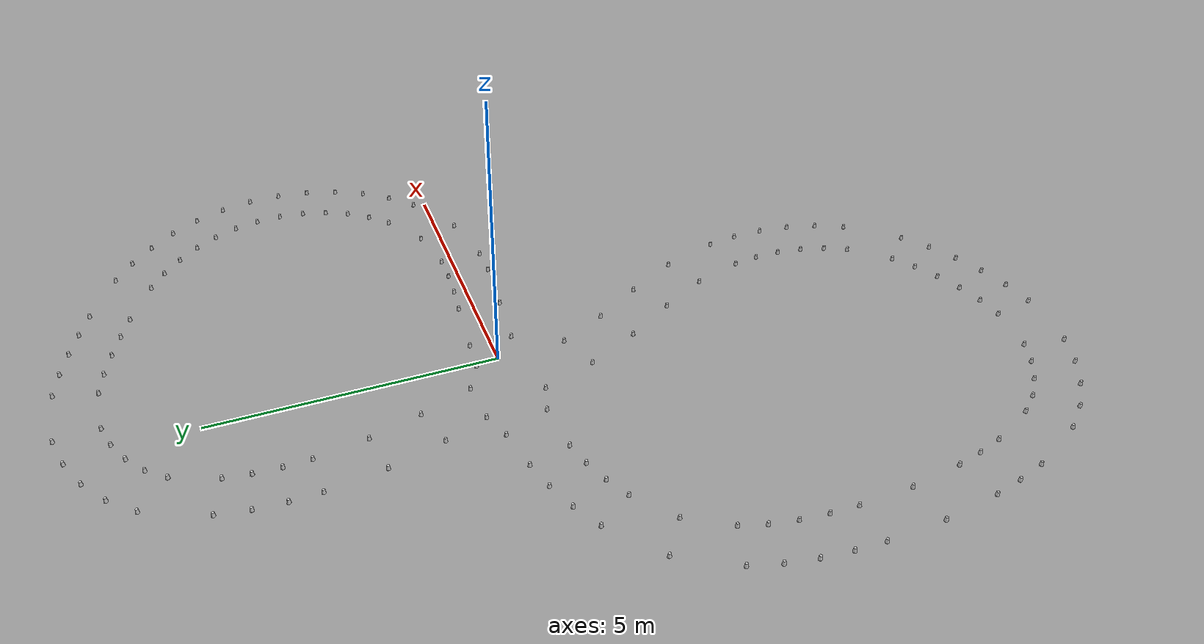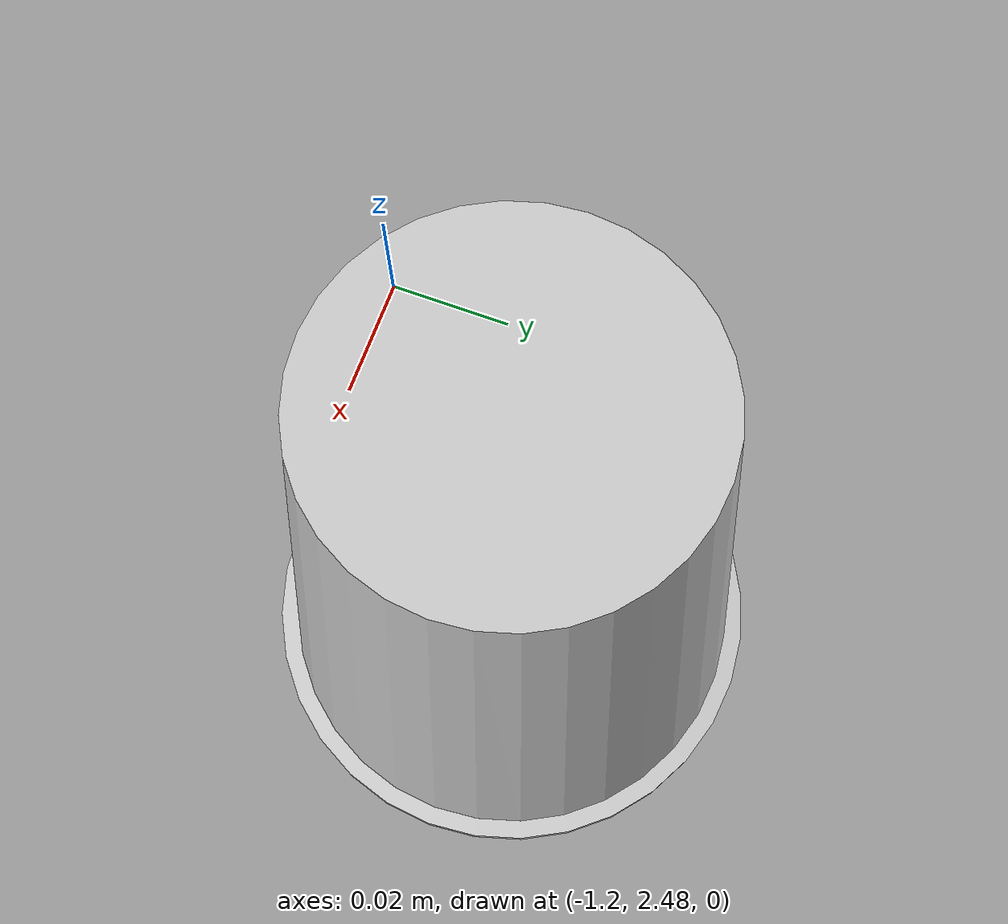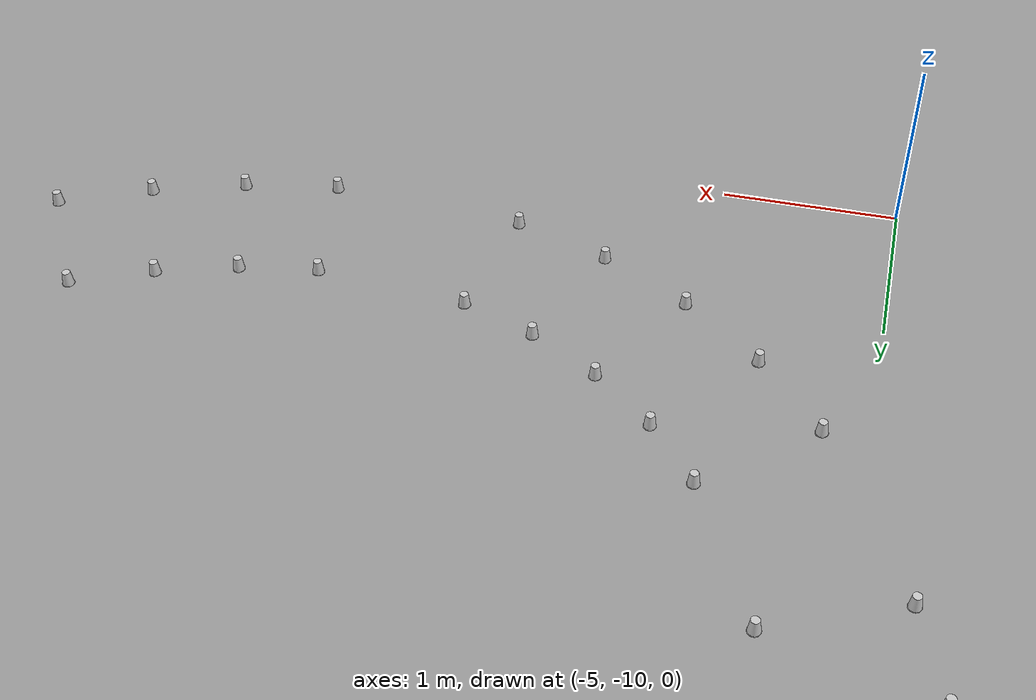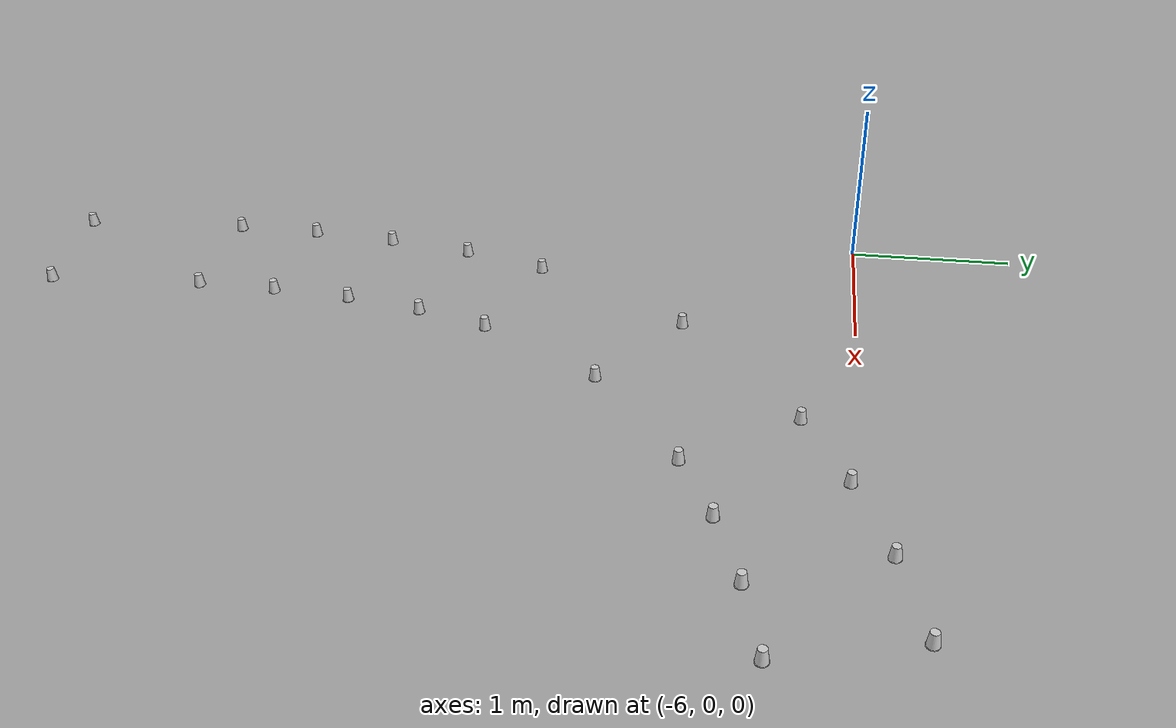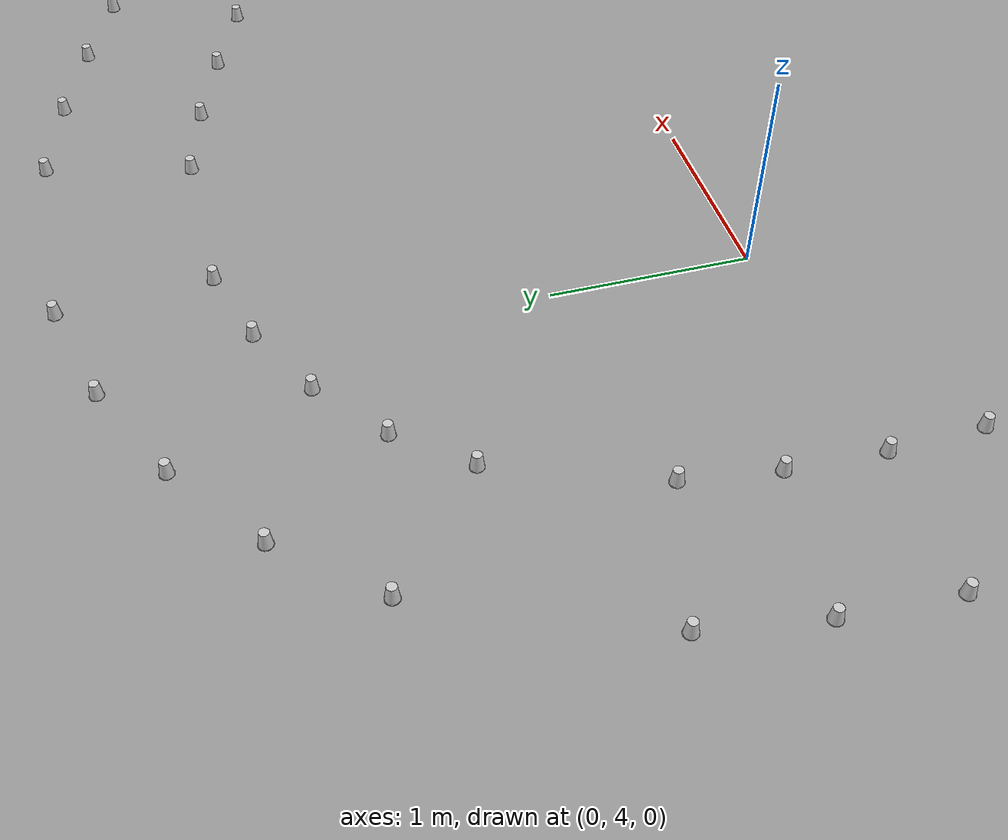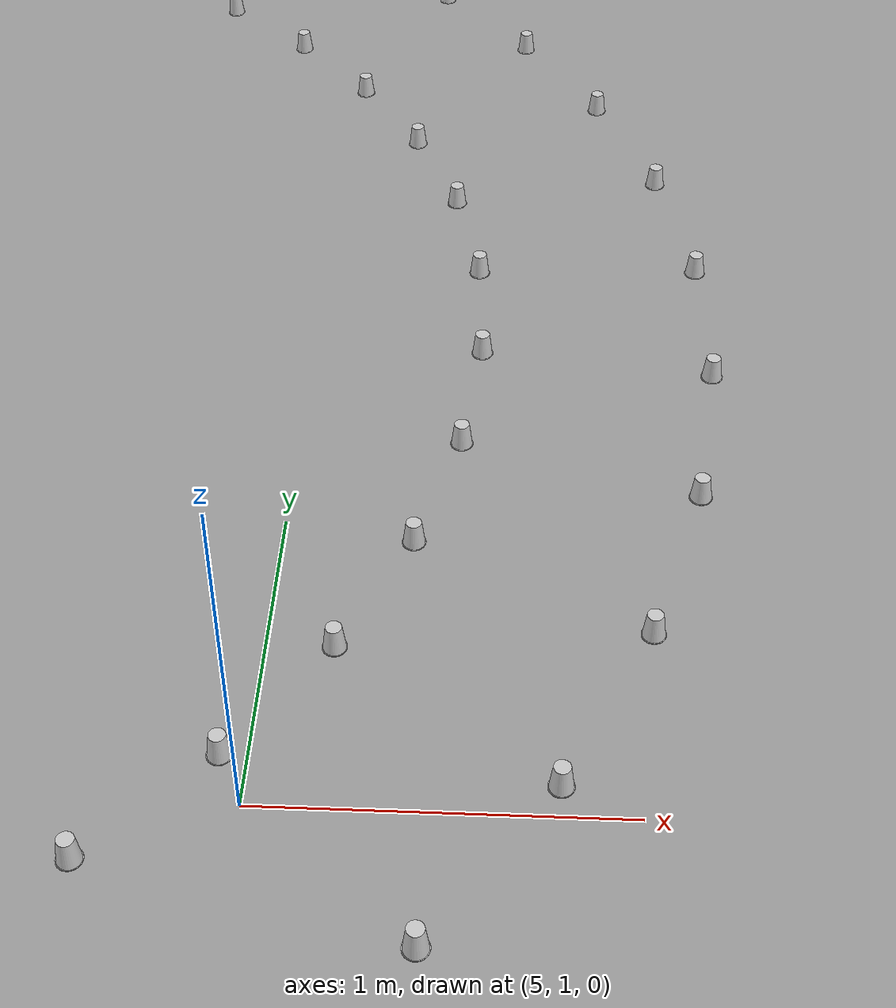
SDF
<?xml version='1.0' encoding='UTF-8'?>
<sdf version="1.4">
  <model name="some track">
    <include>
      <uri>model://cone_yellow</uri>
      <pose>0.48132279614921697 -0.3778677607401346 0 0 0 0</pose>
      <name>cone_right_0</name>
    </include>
    <include>
      <uri>model://cone_yellow</uri>
      <pose>1.4477611567164925 -0.4696054802646993 0 0 0 0</pose>
      <name>cone_right_1</name>
    </include>
    <include>
      <uri>model://cone_yellow</uri>
      <pose>1.9597124156474284 -0.5241509110387617 0 0 0 0</pose>
      <name>cone_right_2</name>
    </include>
    <include>
      <uri>model://cone_yellow</uri>
      <pose>2.483001125687138 -0.5603235943340417 0 0 0 0</pose>
      <name>cone_right_3</name>
    </include>
    <include>
      <uri>model://cone_yellow</uri>
      <pose>3.0131117399974108 -0.5583249863125739 0 0 0 0</pose>
      <name>cone_right_4</name>
    </include>
    <include>
      <uri>model://cone_yellow</uri>
      <pose>4.0753517007882225 -0.3516902630971633 0 0 0 0</pose>
      <name>cone_right_5</name>
    </include>
    <include>
      <uri>model://cone_yellow</uri>
      <pose>5.051785071279866 0.22217435296109966 0 0 0 0</pose>
      <name>cone_right_6</name>
    </include>
    <include>
      <uri>model://cone_yellow</uri>
      <pose>5.459209833447191 0.6255960757815638 0 0 0 0</pose>
      <name>cone_right_7</name>
    </include>
    <include>
      <uri>model://cone_yellow</uri>
      <pose>5.796900401168826 1.0909702355312467 0 0 0 0</pose>
      <name>cone_right_8</name>
    </include>
    <include>
      <uri>model://cone_yellow</uri>
      <pose>6.052728999157264 1.607313784557812 0 0 0 0</pose>
      <name>cone_right_9</name>
    </include>
    <include>
      <uri>model://cone_yellow</uri>
      <pose>6.219144130244934 2.1571436771619856 0 0 0 0</pose>
      <name>cone_right_10</name>
    </include>
    <include>
      <uri>model://cone_yellow</uri>
      <pose>6.294410392109319 2.7234822463460393 0 0 0 0</pose>
      <name>cone_right_11</name>
    </include>
    <include>
      <uri>model://cone_yellow</uri>
      <pose>6.277514421678384 3.2920970524344337 0 0 0 0</pose>
      <name>cone_right_12</name>
    </include>
    <include>
      <uri>model://cone_yellow</uri>
      <pose>6.16645704631754 3.8489052733519276 0 0 0 0</pose>
      <name>cone_right_13</name>
    </include>
    <include>
      <uri>model://cone_yellow</uri>
      <pose>5.9616621440149835 4.378769492685462 0 0 0 0</pose>
      <name>cone_right_14</name>
    </include>
    <include>
      <uri>model://cone_yellow</uri>
      <pose>5.67698883128248 4.866583407496899 0 0 0 0</pose>
      <name>cone_right_15</name>
    </include>
    <include>
      <uri>model://cone_yellow</uri>
      <pose>5.32855436131671 5.3058635480110174 0 0 0 0</pose>
      <name>cone_right_16</name>
    </include>
    <include>
      <uri>model://cone_yellow</uri>
      <pose>4.9305829061986275 5.69287660447196 0 0 0 0</pose>
      <name>cone_right_17</name>
    </include>
    <include>
      <uri>model://cone_yellow</uri>
      <pose>4.495938345825077 6.024170828683577 0 0 0 0</pose>
      <name>cone_right_18</name>
    </include>
    <include>
      <uri>model://cone_yellow</uri>
      <pose>3.5635334489787263 6.536563522477084 0 0 0 0</pose>
      <name>cone_right_19</name>
    </include>
    <include>
      <uri>model://cone_yellow</uri>
      <pose>3.084139124497884 6.741892809957045 0 0 0 0</pose>
      <name>cone_right_20</name>
    </include>
    <include>
      <uri>model://cone_yellow</uri>
      <pose>2.603674813319346 6.930579753614608 0 0 0 0</pose>
      <name>cone_right_21</name>
    </include>
    <include>
      <uri>model://cone_yellow</uri>
      <pose>2.1114730900904024 7.10069104888158 0 0 0 0</pose>
      <name>cone_right_22</name>
    </include>
    <include>
      <uri>model://cone_yellow</uri>
      <pose>1.5950015950742267 7.2318995359506175 0 0 0 0</pose>
      <name>cone_right_23</name>
    </include>
    <include>
      <uri>model://cone_yellow</uri>
      <pose>0.4810884578244432 7.265502058128273 0 0 0 0</pose>
      <name>cone_right_24</name>
    </include>
    <include>
      <uri>model://cone_yellow</uri>
      <pose>-0.08851556487648056 7.124774823698056 0 0 0 0</pose>
      <name>cone_right_25</name>
    </include>
    <include>
      <uri>model://cone_yellow</uri>
      <pose>-0.6231835929031286 6.882606859262642 0 0 0 0</pose>
      <name>cone_right_26</name>
    </include>
    <include>
      <uri>model://cone_yellow</uri>
      <pose>-1.0995174276420916 6.545239179033385 0 0 0 0</pose>
      <name>cone_right_27</name>
    </include>
    <include>
      <uri>model://cone_yellow</uri>
      <pose>-1.4917482211858832 6.115477218535147 0 0 0 0</pose>
      <name>cone_right_28</name>
    </include>
    <include>
      <uri>model://cone_yellow</uri>
      <pose>-1.9494370011229443 5.056103635431237 0 0 0 0</pose>
      <name>cone_right_29</name>
    </include>
    <include>
      <uri>model://cone_yellow</uri>
      <pose>-2.0384049462076814 4.498073571484391 0 0 0 0</pose>
      <name>cone_right_30</name>
    </include>
    <include>
      <uri>model://cone_yellow</uri>
      <pose>-2.0662624881090004 3.950532464946776 0 0 0 0</pose>
      <name>cone_right_31</name>
    </include>
    <include>
      <uri>model://cone_yellow</uri>
      <pose>-2.0476230595355176 3.4167448240584664 0 0 0 0</pose>
      <name>cone_right_32</name>
    </include>
    <include>
      <uri>model://cone_yellow</uri>
      <pose>-1.8923300649842831 2.3785541520572404 0 0 0 0</pose>
      <name>cone_right_33</name>
    </include>
    <include>
      <uri>model://cone_yellow</uri>
      <pose>-1.614239828885959 1.3823987284618067 0 0 0 0</pose>
      <name>cone_right_34</name>
    </include>
    <include>
      <uri>model://cone_yellow</uri>
      <pose>-0.9857225236923464 -0.5151234122107851 0 0 0 0</pose>
      <name>cone_right_35</name>
    </include>
    <include>
      <uri>model://cone_yellow</uri>
      <pose>-0.651237219635493 -1.4733712054150827 0 0 0 0</pose>
      <name>cone_right_36</name>
    </include>
    <include>
      <uri>model://cone_yellow</uri>
      <pose>-0.18861877827943685 -2.4106571381262616 0 0 0 0</pose>
      <name>cone_right_37</name>
    </include>
    <include>
      <uri>model://cone_yellow</uri>
      <pose>0.3386015744162713 -3.2821087636417334 0 0 0 0</pose>
      <name>cone_right_38</name>
    </include>
    <include>
      <uri>model://cone_yellow</uri>
      <pose>0.7902789264347323 -4.130576010421331 0 0 0 0</pose>
      <name>cone_right_39</name>
    </include>
    <include>
      <uri>model://cone_yellow</uri>
      <pose>1.0625443542494355 -5.006240853466414 0 0 0 0</pose>
      <name>cone_right_40</name>
    </include>
    <include>
      <uri>model://cone_yellow</uri>
      <pose>1.1198973659719014 -5.46031050604617 0 0 0 0</pose>
      <name>cone_right_41</name>
    </include>
    <include>
      <uri>model://cone_yellow</uri>
      <pose>1.119688258903305 -5.920070163259467 0 0 0 0</pose>
      <name>cone_right_42</name>
    </include>
    <include>
      <uri>model://cone_yellow</uri>
      <pose>1.058821644265168 -6.376505176615313 0 0 0 0</pose>
      <name>cone_right_43</name>
    </include>
    <include>
      <uri>model://cone_yellow</uri>
      <pose>0.9355455188099915 -6.813418445769893 0 0 0 0</pose>
      <name>cone_right_44</name>
    </include>
    <include>
      <uri>model://cone_yellow</uri>
      <pose>0.7493525259703206 -7.213658747439294 0 0 0 0</pose>
      <name>cone_right_45</name>
    </include>
    <include>
      <uri>model://cone_yellow</uri>
      <pose>0.19328302835405914 -7.865008084565889 0 0 0 0</pose>
      <name>cone_right_46</name>
    </include>
    <include>
      <uri>model://cone_yellow</uri>
      <pose>-0.16869065174000758 -8.131301949417576 0 0 0 0</pose>
      <name>cone_right_47</name>
    </include>
    <include>
      <uri>model://cone_yellow</uri>
      <pose>-0.573113959355651 -8.36217694670698 0 0 0 0</pose>
      <name>cone_right_48</name>
    </include>
    <include>
      <uri>model://cone_yellow</uri>
      <pose>-1.0052982935884194 -8.55586652912246 0 0 0 0</pose>
      <name>cone_right_49</name>
    </include>
    <include>
      <uri>model://cone_yellow</uri>
      <pose>-1.448049380616636 -8.697961718995677 0 0 0 0</pose>
      <name>cone_right_50</name>
    </include>
    <include>
      <uri>model://cone_yellow</uri>
      <pose>-1.89085077743008 -8.774841418921572 0 0 0 0</pose>
      <name>cone_right_51</name>
    </include>
    <include>
      <uri>model://cone_yellow</uri>
      <pose>-2.757195452271703 -8.697465154981195 0 0 0 0</pose>
      <name>cone_right_52</name>
    </include>
    <include>
      <uri>model://cone_yellow</uri>
      <pose>-3.1750076771057016 -8.542245355155163 0 0 0 0</pose>
      <name>cone_right_53</name>
    </include>
    <include>
      <uri>model://cone_yellow</uri>
      <pose>-3.564248309949979 -8.317928455317912 0 0 0 0</pose>
      <name>cone_right_54</name>
    </include>
    <include>
      <uri>model://cone_yellow</uri>
      <pose>-3.9047955637790595 -8.03385006451001 0 0 0 0</pose>
      <name>cone_right_55</name>
    </include>
    <include>
      <uri>model://cone_yellow</uri>
      <pose>-4.180524465612308 -7.700655054745549 0 0 0 0</pose>
      <name>cone_right_56</name>
    </include>
    <include>
      <uri>model://cone_yellow</uri>
      <pose>-4.580627261948859 -6.90355525800216 0 0 0 0</pose>
      <name>cone_right_57</name>
    </include>
    <include>
      <uri>model://cone_yellow</uri>
      <pose>-4.726021345211969 -6.45676091813025 0 0 0 0</pose>
      <name>cone_right_58</name>
    </include>
    <include>
      <uri>model://cone_yellow</uri>
      <pose>-4.844493623463647 -5.996011903479473 0 0 0 0</pose>
      <name>cone_right_59</name>
    </include>
    <include>
      <uri>model://cone_yellow</uri>
      <pose>-5.001282628864635 -5.061425270947253 0 0 0 0</pose>
      <name>cone_right_60</name>
    </include>
    <include>
      <uri>model://cone_yellow</uri>
      <pose>-5.055048955705362 -4.100996063352859 0 0 0 0</pose>
      <name>cone_right_61</name>
    </include>
    <include>
      <uri>model://cone_yellow</uri>
      <pose>-5.044855687678388 -3.6061526543682416 0 0 0 0</pose>
      <name>cone_right_62</name>
    </include>
    <include>
      <uri>model://cone_yellow</uri>
      <pose>-5.004022036623671 -3.1127856446224658 0 0 0 0</pose>
      <name>cone_right_63</name>
    </include>
    <include>
      <uri>model://cone_yellow</uri>
      <pose>-4.922912349006536 -2.638117289693436 0 0 0 0</pose>
      <name>cone_right_64</name>
    </include>
    <include>
      <uri>model://cone_yellow</uri>
      <pose>-4.793017186235045 -2.196256079809202 0 0 0 0</pose>
      <name>cone_right_65</name>
    </include>
    <include>
      <uri>model://cone_yellow</uri>
      <pose>-4.360199683433286 -1.4605280791418678 0 0 0 0</pose>
      <name>cone_right_66</name>
    </include>
    <include>
      <uri>model://cone_yellow</uri>
      <pose>-3.679939596609701 -0.9192379874253134 0 0 0 0</pose>
      <name>cone_right_67</name>
    </include>
    <include>
      <uri>model://cone_yellow</uri>
      <pose>-3.267969375912009 -0.7099213226858354 0 0 0 0</pose>
      <name>cone_right_68</name>
    </include>
    <include>
      <uri>model://cone_yellow</uri>
      <pose>-2.8321285296968406 -0.5460569988895494 0 0 0 0</pose>
      <name>cone_right_69</name>
    </include>
    <include>
      <uri>model://cone_yellow</uri>
      <pose>-2.3861289562748995 -0.4323083423831782 0 0 0 0</pose>
      <name>cone_right_70</name>
    </include>
    <include>
      <uri>model://cone_yellow</uri>
      <pose>-1.4834480963104986 -0.3647709949010325 0 0 0 0</pose>
      <name>cone_right_71</name>
    </include>
    <include>
      <uri>model://cone_yellow</uri>
      <pose>-1.3224528378844838 0.6174762589124327 0 0 0 0</pose>
      <name>cone_right_72</name>
    </include>
    <include>
      <uri>model://cone_blue</uri>
      <pose>0.4857809554836489 0.37211898901971874 0 0 0 0</pose>
      <name>cone_left_0</name>
    </include>
    <include>
      <uri>model://cone_blue</uri>
      <pose>1.5294681799821395 0.27593054324393507 0 0 0 0</pose>
      <name>cone_left_1</name>
    </include>
    <include>
      <uri>model://cone_blue</uri>
      <pose>2.0391683607531355 0.22162838123701534 0 0 0 0</pose>
      <name>cone_left_2</name>
    </include>
    <include>
      <uri>model://cone_blue</uri>
      <pose>2.5343432593740767 0.18791699886340882 0 0 0 0</pose>
      <name>cone_left_3</name>
    </include>
    <include>
      <uri>model://cone_blue</uri>
      <pose>3.008823225817691 0.19166275268462482 0 0 0 0</pose>
      <name>cone_left_4</name>
    </include>
    <include>
      <uri>model://cone_blue</uri>
      <pose>3.8714006946339325 0.3700465220874724 0 0 0 0</pose>
      <name>cone_left_5</name>
    </include>
    <include>
      <uri>model://cone_blue</uri>
      <pose>4.612077287222684 0.8297573223072806 0 0 0 0</pose>
      <name>cone_left_6</name>
    </include>
    <include>
      <uri>model://cone_blue</uri>
      <pose>4.9269242766864805 1.1539634537147028 0 0 0 0</pose>
      <name>cone_left_7</name>
    </include>
    <include>
      <uri>model://cone_blue</uri>
      <pose>5.18610908293594 1.5262103595677752 0 0 0 0</pose>
      <name>cone_left_8</name>
    </include>
    <include>
      <uri>model://cone_blue</uri>
      <pose>5.377659791975031 1.9340882718029926 0 0 0 0</pose>
      <name>cone_left_9</name>
    </include>
    <include>
      <uri>model://cone_blue</uri>
      <pose>5.499385551316215 2.367969643443444 0 0 0 0</pose>
      <name>cone_left_10</name>
    </include>
    <include>
      <uri>model://cone_blue</uri>
      <pose>5.550132048045552 2.8159470859213958 0 0 0 0</pose>
      <name>cone_left_11</name>
    </include>
    <include>
      <uri>model://cone_blue</uri>
      <pose>5.528065283773825 3.263357016002441 0 0 0 0</pose>
      <name>cone_left_12</name>
    </include>
    <include>
      <uri>model://cone_blue</uri>
      <pose>5.432337211353723 3.6953863236659106 0 0 0 0</pose>
      <name>cone_left_13</name>
    </include>
    <include>
      <uri>model://cone_blue</uri>
      <pose>5.264778113689754 4.101546390694185 0 0 0 0</pose>
      <name>cone_left_14</name>
    </include>
    <include>
      <uri>model://cone_blue</uri>
      <pose>5.032365614592357 4.483228599904665 0 0 0 0</pose>
      <name>cone_left_15</name>
    </include>
    <include>
      <uri>model://cone_blue</uri>
      <pose>4.7440491633217725 4.835912834087847 0 0 0 0</pose>
      <name>cone_left_16</name>
    </include>
    <include>
      <uri>model://cone_blue</uri>
      <pose>4.410671290254011 5.152328816014864 0 0 0 0</pose>
      <name>cone_left_17</name>
    </include>
    <include>
      <uri>model://cone_blue</uri>
      <pose>4.04421496885332 5.4254672369979815 0 0 0 0</pose>
      <name>cone_left_18</name>
    </include>
    <include>
      <uri>model://cone_blue</uri>
      <pose>3.231804891739429 5.8639149037228835 0 0 0 0</pose>
      <name>cone_left_19</name>
    </include>
    <include>
      <uri>model://cone_blue</uri>
      <pose>2.789590049581309 6.05215311814151 0 0 0 0</pose>
      <name>cone_left_20</name>
    </include>
    <include>
      <uri>model://cone_blue</uri>
      <pose>2.3297435310508936 6.232395213113487 0 0 0 0</pose>
      <name>cone_left_21</name>
    </include>
    <include>
      <uri>model://cone_blue</uri>
      <pose>1.8669276209301562 6.39167940334027 0 0 0 0</pose>
      <name>cone_left_22</name>
    </include>
    <include>
      <uri>model://cone_blue</uri>
      <pose>1.4122206272018478 6.504513037736885 0 0 0 0</pose>
      <name>cone_left_23</name>
    </include>
    <include>
      <uri>model://cone_blue</uri>
      <pose>0.5299236584121445 6.517093664813794 0 0 0 0</pose>
      <name>cone_left_24</name>
    </include>
    <include>
      <uri>model://cone_blue</uri>
      <pose>0.09959088666443695 6.398747301569118 0 0 0 0</pose>
      <name>cone_left_25</name>
    </include>
    <include>
      <uri>model://cone_blue</uri>
      <pose>-0.30652462502339883 6.202734004927846 0 0 0 0</pose>
      <name>cone_left_26</name>
    </include>
    <include>
      <uri>model://cone_blue</uri>
      <pose>-0.6588253349490544 5.938369770150525 0 0 0 0</pose>
      <name>cone_left_27</name>
    </include>
    <include>
      <uri>model://cone_blue</uri>
      <pose>-0.9301167791710148 5.618415730044739 0 0 0 0</pose>
      <name>cone_left_28</name>
    </include>
    <include>
      <uri>model://cone_blue</uri>
      <pose>-1.2319028338952045 4.8378269329163 0 0 0 0</pose>
      <name>cone_left_29</name>
    </include>
    <include>
      <uri>model://cone_blue</uri>
      <pose>-1.2969644783221206 4.3850867024170475 0 0 0 0</pose>
      <name>cone_left_30</name>
    </include>
    <include>
      <uri>model://cone_blue</uri>
      <pose>-1.3170953449480953 3.9151970491698496 0 0 0 0</pose>
      <name>cone_left_31</name>
    </include>
    <include>
      <uri>model://cone_blue</uri>
      <pose>-1.2981478896828074 3.4447978056157167 0 0 0 0</pose>
      <name>cone_left_32</name>
    </include>
    <include>
      <uri>model://cone_blue</uri>
      <pose>-1.155260137707022 2.5172189359913477 0 0 0 0</pose>
      <name>cone_left_33</name>
    </include>
    <include>
      <uri>model://cone_blue</uri>
      <pose>-0.8973226976603303 1.6026935921223449 0 0 0 0</pose>
      <name>cone_left_34</name>
    </include>
    <include>
      <uri>model://cone_blue</uri>
      <pose>-0.5790703347645441 0.6713305583464022 0 0 0 0</pose>
      <name>cone_left_35</name>
    </include>
    <include>
      <uri>model://cone_blue</uri>
      <pose>0.05179429798540269 -1.2121305400667104 0 0 0 0</pose>
      <name>cone_left_36</name>
    </include>
    <include>
      <uri>model://cone_blue</uri>
      <pose>0.47049051749458415 -2.0527815504924107 0 0 0 0</pose>
      <name>cone_left_37</name>
    </include>
    <include>
      <uri>model://cone_blue</uri>
      <pose>0.978625793723124 -2.8911241108730423 0 0 0 0</pose>
      <name>cone_left_38</name>
    </include>
    <include>
      <uri>model://cone_blue</uri>
      <pose>1.462933683539522 -3.7988599002543744 0 0 0 0</pose>
      <name>cone_left_39</name>
    </include>
    <include>
      <uri>model://cone_blue</uri>
      <pose>1.7892673374308337 -4.820839381746447 0 0 0 0</pose>
      <name>cone_left_40</name>
    </include>
    <include>
      <uri>model://cone_blue</uri>
      <pose>1.8634338157195274 -5.362058035865029 0 0 0 0</pose>
      <name>cone_left_41</name>
    </include>
    <include>
      <uri>model://cone_blue</uri>
      <pose>1.8696749706775972 -5.915605618267559 0 0 0 0</pose>
      <name>cone_left_42</name>
    </include>
    <include>
      <uri>model://cone_blue</uri>
      <pose>1.802919315429409 -6.470412874744661 0 0 0 0</pose>
      <name>cone_left_43</name>
    </include>
    <include>
      <uri>model://cone_blue</uri>
      <pose>1.6590144866336811 -7.011137065520601 0 0 0 0</pose>
      <name>cone_left_44</name>
    </include>
    <include>
      <uri>model://cone_blue</uri>
      <pose>1.4326825391624771 -7.5227867032614855 0 0 0 0</pose>
      <name>cone_left_45</name>
    </include>
    <include>
      <uri>model://cone_blue</uri>
      <pose>0.7260866129413872 -8.392853080990875 0 0 0 0</pose>
      <name>cone_left_46</name>
    </include>
    <include>
      <uri>model://cone_blue</uri>
      <pose>0.28115677815296264 -8.731416346694203 0 0 0 0</pose>
      <name>cone_left_47</name>
    </include>
    <include>
      <uri>model://cone_blue</uri>
      <pose>-0.19758846594757004 -9.011392322218539 0 0 0 0</pose>
      <name>cone_left_48</name>
    </include>
    <include>
      <uri>model://cone_blue</uri>
      <pose>-0.6959085975895243 -9.239078074699458 0 0 0 0</pose>
      <name>cone_left_49</name>
    </include>
    <include>
      <uri>model://cone_blue</uri>
      <pose>-1.2153947573044726 -9.410963700936454 0 0 0 0</pose>
      <name>cone_left_50</name>
    </include>
    <include>
      <uri>model://cone_blue</uri>
      <pose>-1.7568799189256123 -9.51277895629962 0 0 0 0</pose>
      <name>cone_left_51</name>
    </include>
    <include>
      <uri>model://cone_blue</uri>
      <pose>-2.8825351217685053 -9.436917633001542 0 0 0 0</pose>
      <name>cone_left_52</name>
    </include>
    <include>
      <uri>model://cone_blue</uri>
      <pose>-3.427144379056242 -9.248593062399621 0 0 0 0</pose>
      <name>cone_left_53</name>
    </include>
    <include>
      <uri>model://cone_blue</uri>
      <pose>-3.9310552665632623 -8.972109360404648 0 0 0 0</pose>
      <name>cone_left_54</name>
    </include>
    <include>
      <uri>model://cone_blue</uri>
      <pose>-4.378018707101522 -8.615709030775898 0 0 0 0</pose>
      <name>cone_left_55</name>
    </include>
    <include>
      <uri>model://cone_blue</uri>
      <pose>-4.7514044024077755 -8.18706650379296 0 0 0 0</pose>
      <name>cone_left_56</name>
    </include>
    <include>
      <uri>model://cone_blue</uri>
      <pose>-5.268054347016969 -7.2034619146717995 0 0 0 0</pose>
      <name>cone_left_57</name>
    </include>
    <include>
      <uri>model://cone_blue</uri>
      <pose>-5.4383996700858255 -6.691318208040238 0 0 0 0</pose>
      <name>cone_left_58</name>
    </include>
    <include>
      <uri>model://cone_blue</uri>
      <pose>-5.570556114395938 -6.183983335514227 0 0 0 0</pose>
      <name>cone_left_59</name>
    </include>
    <include>
      <uri>model://cone_blue</uri>
      <pose>-5.744044218511874 -5.165373435648259 0 0 0 0</pose>
      <name>cone_left_60</name>
    </include>
    <include>
      <uri>model://cone_blue</uri>
      <pose>-5.804692147349274 -4.124127972524585 0 0 0 0</pose>
      <name>cone_left_61</name>
    </include>
    <include>
      <uri>model://cone_blue</uri>
      <pose>-5.79471117640938 -3.591430357672206 0 0 0 0</pose>
      <name>cone_left_62</name>
    </include>
    <include>
      <uri>model://cone_blue</uri>
      <pose>-5.7515542379822255 -3.0519941326159956 0 0 0 0</pose>
      <name>cone_left_63</name>
    </include>
    <include>
      <uri>model://cone_blue</uri>
      <pose>-5.662551349453125 -2.5138830391086233 0 0 0 0</pose>
      <name>cone_left_64</name>
    </include>
    <include>
      <uri>model://cone_blue</uri>
      <pose>-5.513681315432668 -1.9885466363844229 0 0 0 0</pose>
      <name>cone_left_65</name>
    </include>
    <include>
      <uri>model://cone_blue</uri>
      <pose>-4.973367002779253 -1.0286417069488096 0 0 0 0</pose>
      <name>cone_left_66</name>
    </include>
    <include>
      <uri>model://cone_blue</uri>
      <pose>-4.108303532128787 -0.3036047047426756 0 0 0 0</pose>
      <name>cone_left_67</name>
    </include>
    <include>
      <uri>model://cone_blue</uri>
      <pose>-3.612330449678125 -0.04365151932187733 0 0 0 0</pose>
      <name>cone_left_68</name>
    </include>
    <include>
      <uri>model://cone_blue</uri>
      <pose>-3.0996300458707693 0.15461620513972524 0 0 0 0</pose>
      <name>cone_left_69</name>
    </include>
    <include>
      <uri>model://cone_blue</uri>
      <pose>-2.575057044725895 0.2935058055873973 0 0 0 0</pose>
      <name>cone_left_70</name>
    </include>
    <include>
      <uri>model://cone_blue</uri>
      <pose>-1.8159421189367961 0.4380256112570535 0 0 0 0</pose>
      <name>cone_left_71</name>
    </include>
    <include>
      <uri>model://cone_blue</uri>
      <pose>-0.06629830429680084 0.4155942803001338 0 0 0 0</pose>
      <name>cone_left_72</name>
    </include>
  </model>
</sdf>

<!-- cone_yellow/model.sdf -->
<sdf version='1.4'>
  <model name="cone_yellow">
    <link name="link">
    <collision name="collision"><geometry><box><size> 0.05 0.05 0.01</size>
             </box></geometry></collision>
      <visual name="visual">
        <geometry>
          <mesh>
            <uri>model://cup.dae</uri>
            <scale>1 1 1</scale>
          </mesh>
        </geometry>
        <material>
            <script>
              <uri>model://cone_yellow/materials/scripts</uri>
              <uri>model://cone_yellow/materials/textures</uri>
              <name>cone_yellow/Image</name>
            </script>
        </material>
      </visual>
    </link>
  </model>
</sdf>

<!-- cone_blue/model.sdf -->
<sdf version='1.4'>
  <model name="cone_blue">
    <link name="link">
    <collision name="collision"><geometry><box><size> 0.05 0.05 0.01</size>
             </box></geometry></collision>
      <visual name="visual">
        <geometry>
          <mesh>
            <uri>model://cup.dae</uri>
            <scale>1 1 1</scale>
          </mesh>
        </geometry>
        <material>
            <script>
              <uri>model://cone_blue/materials/scripts</uri>
              <uri>model://cone_blue/materials/textures</uri>
              <name>cone_blue/Image</name>
            </script>
        </material>
      </visual>
    </link>
  </model>
</sdf>
